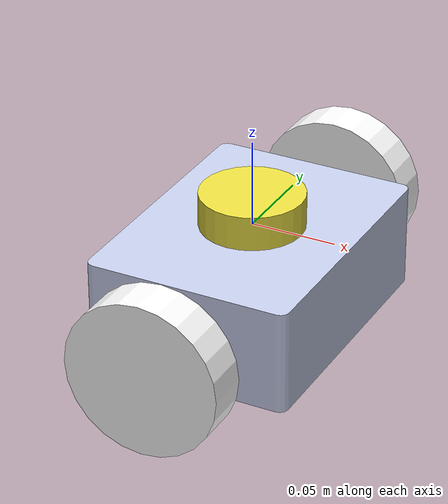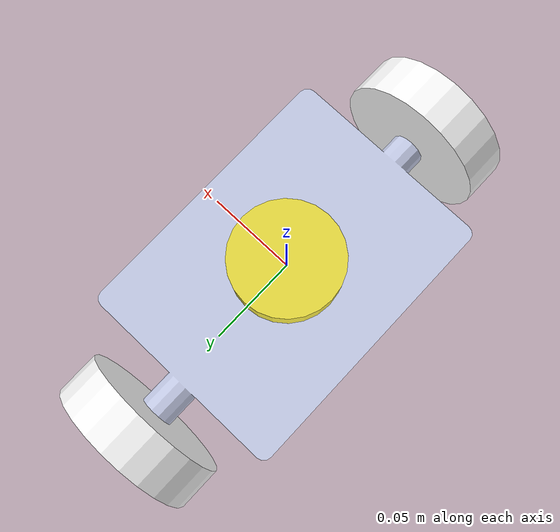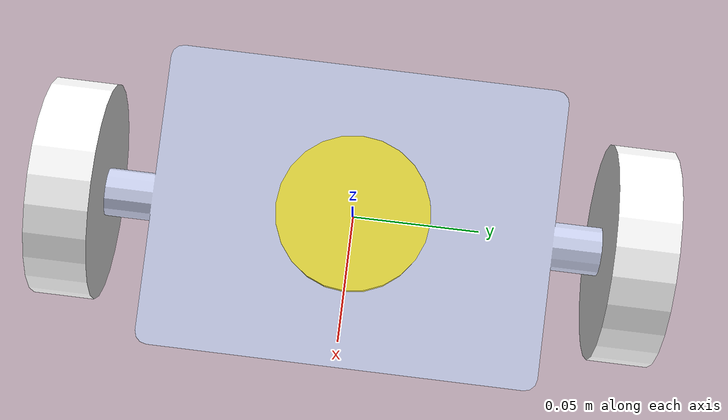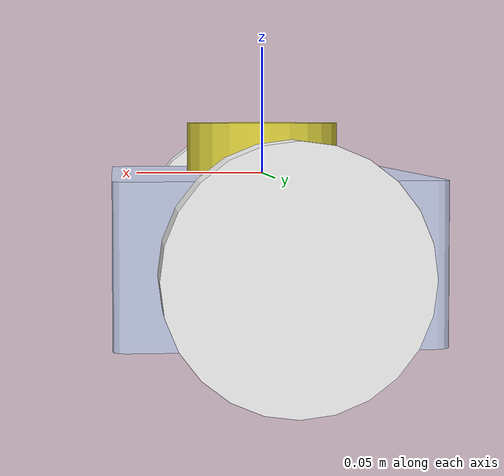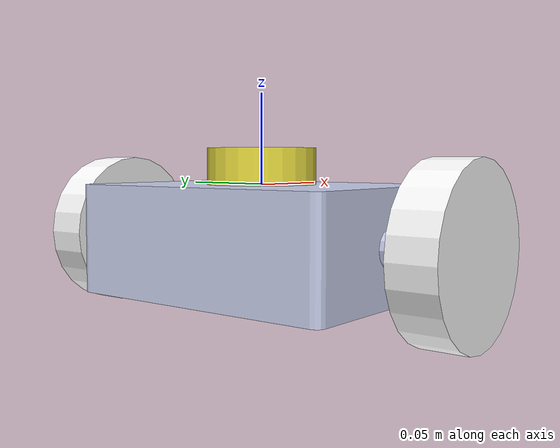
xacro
<?xml version="1.0" encoding="utf-8"?>
<robot
  name="robot"
  xmlns:xacro="http://ros.org/wiki/xacro">

  <xacro:include filename="$(find robot)/urdf/robot.gazebo.xacro"/>

  <link
    name="base_link">
    <inertial>
      <origin
        xyz="1.47451495458029E-17 0 -0.03"
        rpy="0 0 0" />
      <mass
        value="1.17270353755551" />
      <inertia
        ixx="0.00300664842174698"
        ixy="-4.06347892977222E-18"
        ixz="1.70399206185924E-20"
        iyy="0.00172424770321966"
        iyz="2.53324062594359E-21"
        izz="0.00403936913414965" />
    </inertial>
    <visual>
      <origin
        xyz="0 0 0"
        rpy="0 0 0" />
      <geometry>
        <mesh
          filename="package://robot/meshes/base_link.STL" />
      </geometry>
      <material
        name="">
        <color
          rgba="0.792156862745098 0.819607843137255 0.933333333333333 1" />
      </material>
    </visual>
    <collision>
      <origin
        xyz="0 0 0"
        rpy="0 0 0" />
      <geometry>
        <mesh
          filename="package://robot/meshes/base_link.STL" />
      </geometry>
    </collision>
  </link>
  <link
    name="left_wheel_link">
    <inertial>
      <origin
        xyz="0 0.0125 0"
        rpy="0 0 0" />
      <mass
        value="0.151189146454009" />
      <inertia
        ixx="8.81936687648385E-05"
        ixy="1.44447723920675E-37"
        ixz="1.31516848005396E-37"
        iyy="0.000160638468107384"
        iyz="2.75506488473974E-37"
        izz="8.81936687648385E-05" />
    </inertial>
    <visual>
      <origin
        xyz="0 0 0"
        rpy="${pi/2} 0 0" />
      <geometry>
        <cylinder radius="0.045" length="0.025"/>
      </geometry>
      <material
        name="">
        <color
          rgba="1 1 1 1" />
      </material>
    </visual>
    <collision>
      <origin
        xyz="0 0 0"
        rpy="${pi/2} 0 0" />
      <geometry>
        <cylinder radius="0.045" length="0.025"/>
      </geometry>
    </collision>
  </link>
  <joint
    name="left_wheel_joint"
    type="continuous">
    <origin
      xyz="0 -0.115 -0.03"
      rpy="0 0 0" />
    <parent
      link="base_link" />
    <child
      link="left_wheel_link" />
    <axis
      xyz="0 1 0" />
  </joint>
  <link
    name="right_wheel_link">
    <inertial>
      <origin
        xyz="2.60208521396521E-18 -0.0125 -8.67361737988404E-19"
        rpy="0 0 0" />
      <mass
        value="0.151189146454009" />
      <inertia
        ixx="8.81936687648385E-05"
        ixy="-1.41172157875717E-21"
        ixz="6.01853107621011E-36"
        iyy="0.000160638468107384"
        iyz="-6.57752008171852E-37"
        izz="8.81936687648384E-05" />
    </inertial>
    <visual>
      <origin
        xyz="0 0 0"
        rpy="${pi/2} 0 0" />
      <geometry>
        <cylinder radius="0.045" length="0.025"/>
      </geometry>
      <material
        name="">
        <color
          rgba="1 1 1 1" />
      </material>
    </visual>
    <collision>
      <origin
        xyz="0 0 0"
        rpy="${pi/2} 0 0" />
      <geometry>
        <cylinder radius="0.045" length="0.025"/>
      </geometry>
    </collision>
  </link>
  <joint
    name="right_wheel_joint"
    type="continuous">
    <origin
      xyz="0 0.115 -0.03"
      rpy="0 0 0" />
    <parent
      link="base_link" />
    <child
      link="right_wheel_link" />
    <axis
      xyz="0 1 0" />
  </joint>

  <!-- 添加了传感器 激光雷达 -->
  <link name="laser_link">
    <visual>
      <geometry>
        <cylinder radius="0.03" length="0.02" />
      </geometry>
    </visual>
  </link>
  <joint name="laser_joint" type="fixed">
    <parent link="base_link" />
    <child link="laser_link" />
    <origin xyz="0 0 0.01" />
  </joint>
</robot>
